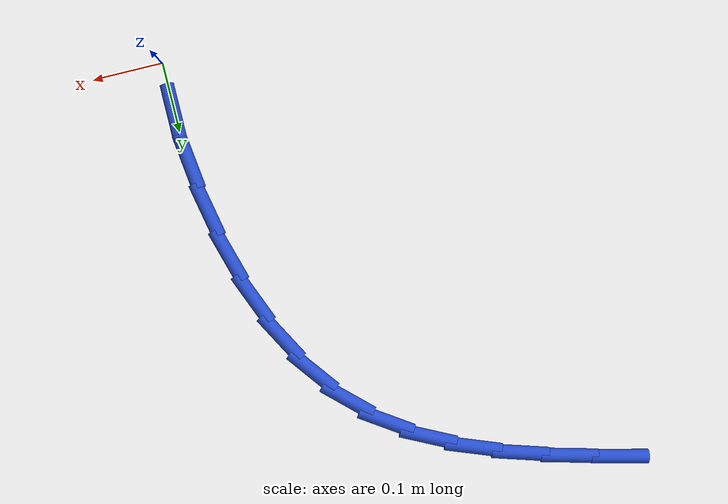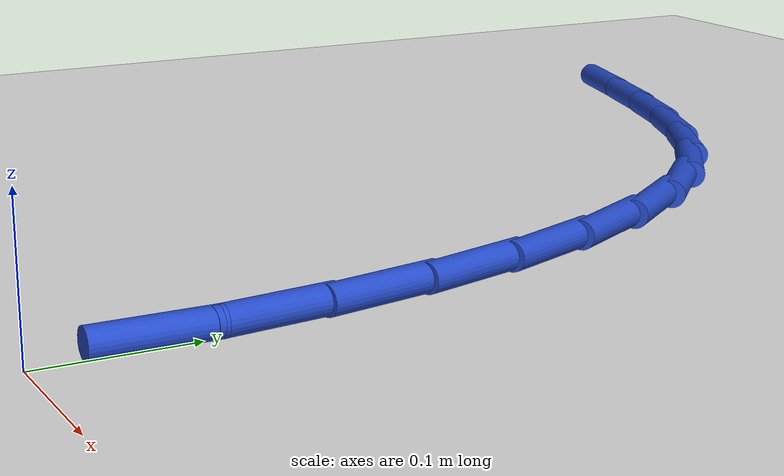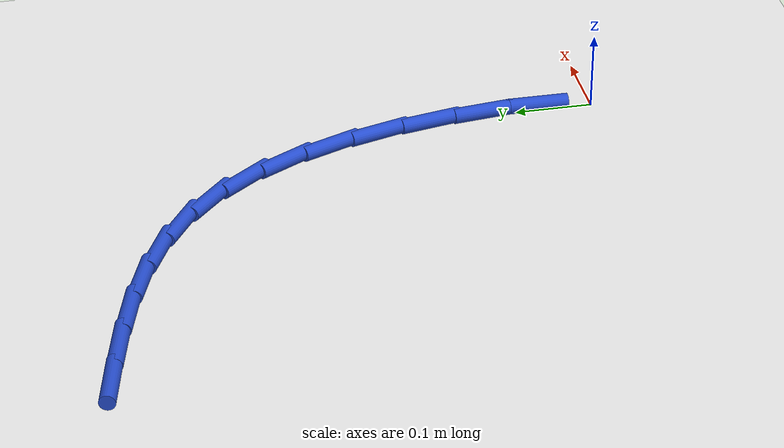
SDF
<sdf version="1.6">
 <world name="default">
  <model name="ground_plane">
   <static>1</static>
   <link name="link">
    <collision name="collision">
     <geometry><plane><normal>0 0 1</normal><size>100 100</size></plane></geometry>
     <surface><friction><ode><mu>100</mu><mu2>50</mu2></ode></friction></surface>
    </collision>
    <visual name="visual">
     <cast_shadows>0</cast_shadows>
     <geometry><plane><normal>0 0 1</normal><size>100 100</size></plane></geometry>
     <material>
      <script><uri>file://media/materials/scripts/gazebo.material</uri><name>Gazebo/WhiteGlow</name></script>
     </material>
    </visual>
   </link>
  </model>
  <model name="line">
   <link name="link_2">
    <pose>-0.003942654659674812 0.14427103619464177 0.01 0 1.57 -1.4509430429370398</pose>
    <collision name="collision">
     <geometry><cylinder><radius>0.01</radius><length>0.08</length></cylinder></geometry>
    </collision>
    <visual name="visual">
     <material>
      <script><name>Gazebo/Blue</name><uri>file://media/materials/scripts/gazebo.material</uri></script>
     </material>
     <geometry><cylinder><radius>0.01</radius><length>0.08</length></cylinder></geometry>
    </visual>
   </link>
   <link name="link_3">
    <pose>-0.012545575846346725 0.21570577957308798 0.01 0 1.57 -1.377444389646915</pose>
    <collision name="collision">
     <geometry><cylinder><radius>0.01</radius><length>0.08</length></cylinder></geometry>
    </collision>
    <visual name="visual">
     <material>
      <script><name>Gazebo/Blue</name><uri>file://media/materials/scripts/gazebo.material</uri></script>
     </material>
     <geometry><cylinder><radius>0.01</radius><length>0.08</length></cylinder></geometry>
    </visual>
   </link>
   <link name="link_4">
    <pose>-0.026143071776671842 0.28515232852996597 0.01 0 1.57 -1.2914608826855896</pose>
    <collision name="collision">
     <geometry><cylinder><radius>0.01</radius><length>0.08</length></cylinder></geometry>
    </collision>
    <visual name="visual">
     <material>
      <script><name>Gazebo/Blue</name><uri>file://media/materials/scripts/gazebo.material</uri></script>
     </material>
     <geometry><cylinder><radius>0.01</radius><length>0.08</length></cylinder></geometry>
    </visual>
   </link>
   <link name="link_5">
    <pose>-0.04516527657997281 0.35146992460853665 0.01 0 1.57 -1.1894858533224069</pose>
    <collision name="collision">
     <geometry><cylinder><radius>0.01</radius><length>0.08</length></cylinder></geometry>
    </collision>
    <visual name="visual">
     <material>
      <script><name>Gazebo/Blue</name><uri>file://media/materials/scripts/gazebo.material</uri></script>
     </material>
     <geometry><cylinder><radius>0.01</radius><length>0.08</length></cylinder></geometry>
    </visual>
   </link>
   <link name="link_6">
    <pose>-0.07004232438557223 0.413517809352061 0.01 0 1.57 -1.0677979620006386</pose>
    <collision name="collision">
     <geometry><cylinder><radius>0.01</radius><length>0.08</length></cylinder></geometry>
    </collision>
    <visual name="visual">
     <material>
      <script><name>Gazebo/Blue</name><uri>file://media/materials/scripts/gazebo.material</uri></script>
     </material>
     <geometry><cylinder><radius>0.01</radius><length>0.08</length></cylinder></geometry>
    </visual>
   </link>
   <link name="link_7">
    <pose>-0.10120434932279275 0.47015522430380025 0.01 0 1.57 -0.9233140937739832</pose>
    <collision name="collision">
     <geometry><cylinder><radius>0.01</radius><length>0.08</length></cylinder></geometry>
    </collision>
    <visual name="visual">
     <material>
      <script><name>Gazebo/Blue</name><uri>file://media/materials/scripts/gazebo.material</uri></script>
     </material>
     <geometry><cylinder><radius>0.01</radius><length>0.08</length></cylinder></geometry>
    </visual>
   </link>
   <link name="link_8">
    <pose>-0.1390814855209571 0.5202414110070154 0.01 0 1.57 -0.7565608419142539</pose>
    <collision name="collision">
     <geometry><cylinder><radius>0.01</radius><length>0.08</length></cylinder></geometry>
    </collision>
    <visual name="visual">
     <material>
      <script><name>Gazebo/Blue</name><uri>file://media/materials/scripts/gazebo.material</uri></script>
     </material>
     <geometry><cylinder><radius>0.01</radius><length>0.08</length></cylinder></geometry>
    </visual>
   </link>
   <link name="link_9">
    <pose>-0.18406326083518462 0.5627009148386661 0.01 0 1.57 -0.5949840466123627</pose>
    <collision name="collision">
     <geometry><cylinder><radius>0.01</radius><length>0.08</length></cylinder></geometry>
    </collision>
    <visual name="visual">
     <material>
      <script><name>Gazebo/Blue</name><uri>file://media/materials/scripts/gazebo.material</uri></script>
     </material>
     <geometry><cylinder><radius>0.01</radius><length>0.08</length></cylinder></geometry>
    </visual>
   </link>
   <link name="link_10">
    <pose>-0.23576972935275464 0.5976957644946477 0.01 0 1.57 -0.4652752291363535</pose>
    <collision name="collision">
     <geometry><cylinder><radius>0.01</radius><length>0.08</length></cylinder></geometry>
    </collision>
    <visual name="visual">
     <material>
      <script><name>Gazebo/Blue</name><uri>file://media/materials/scripts/gazebo.material</uri></script>
     </material>
     <geometry><cylinder><radius>0.01</radius><length>0.08</length></cylinder></geometry>
    </visual>
   </link>
   <link name="link_11">
    <pose>-0.29313307299425184 0.6264942386398876 0.01 0 1.57 -0.3684504840023939</pose>
    <collision name="collision">
     <geometry><cylinder><radius>0.01</radius><length>0.08</length></cylinder></geometry>
    </collision>
    <visual name="visual">
     <material>
      <script><name>Gazebo/Blue</name><uri>file://media/materials/scripts/gazebo.material</uri></script>
     </material>
     <geometry><cylinder><radius>0.01</radius><length>0.08</length></cylinder></geometry>
    </visual>
   </link>
   <link name="link_12">
    <pose>-0.3550612520484158 0.6504035696588792 0.01 0 1.57 -0.30134648259122376</pose>
    <collision name="collision">
     <geometry><cylinder><radius>0.01</radius><length>0.08</length></cylinder></geometry>
    </collision>
    <visual name="visual">
     <material>
      <script><name>Gazebo/Blue</name><uri>file://media/materials/scripts/gazebo.material</uri></script>
     </material>
     <geometry><cylinder><radius>0.01</radius><length>0.08</length></cylinder></geometry>
    </visual>
   </link>
   <link name="link_13">
    <pose>-0.42046222680398626 0.670730989936116 0.01 0 1.57 -0.26029402294865883</pose>
    <collision name="collision">
     <geometry><cylinder><radius>0.01</radius><length>0.08</length></cylinder></geometry>
    </collision>
    <visual name="visual">
     <material>
      <script><name>Gazebo/Blue</name><uri>file://media/materials/scripts/gazebo.material</uri></script>
     </material>
     <geometry><cylinder><radius>0.01</radius><length>0.08</length></cylinder></geometry>
    </visual>
   </link>
   <link name="link_14">
    <pose>-0.48824395754970246 0.6887837318560911 0.01 0 1.57 -0.24249282959848606</pose>
    <collision name="collision">
     <geometry><cylinder><radius>0.01</radius><length>0.08</length></cylinder></geometry>
    </collision>
    <visual name="visual">
     <material>
      <script><name>Gazebo/Blue</name><uri>file://media/materials/scripts/gazebo.material</uri></script>
     </material>
     <geometry><cylinder><radius>0.01</radius><length>0.08</length></cylinder></geometry>
    </visual>
   </link>
   <link name="link_111">
    <pose>0.000182728749328398 0.07215842910090293 0.01 0 1.57 1.5682640050549008</pose>
    <collision name="collision">
     <geometry><cylinder><radius>0.01</radius><length>0.08</length></cylinder></geometry>
    </collision>
    <visual name="visual">
     <material>
      <script><name>Gazebo/Blue</name><uri>file://media/materials/scripts/gazebo.material</uri></script>
     </material>
     <geometry><cylinder><radius>0.01</radius><length>0.08</length></cylinder></geometry>
    </visual>
   </link>
  </model>
 </world>
</sdf>
